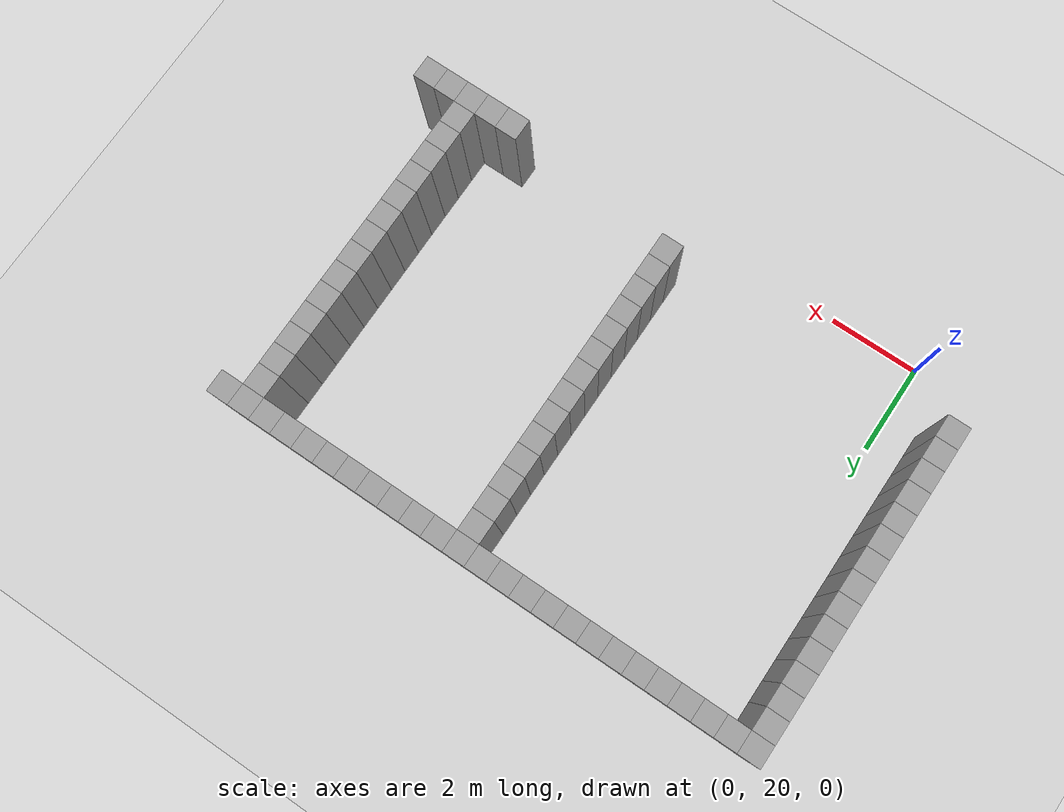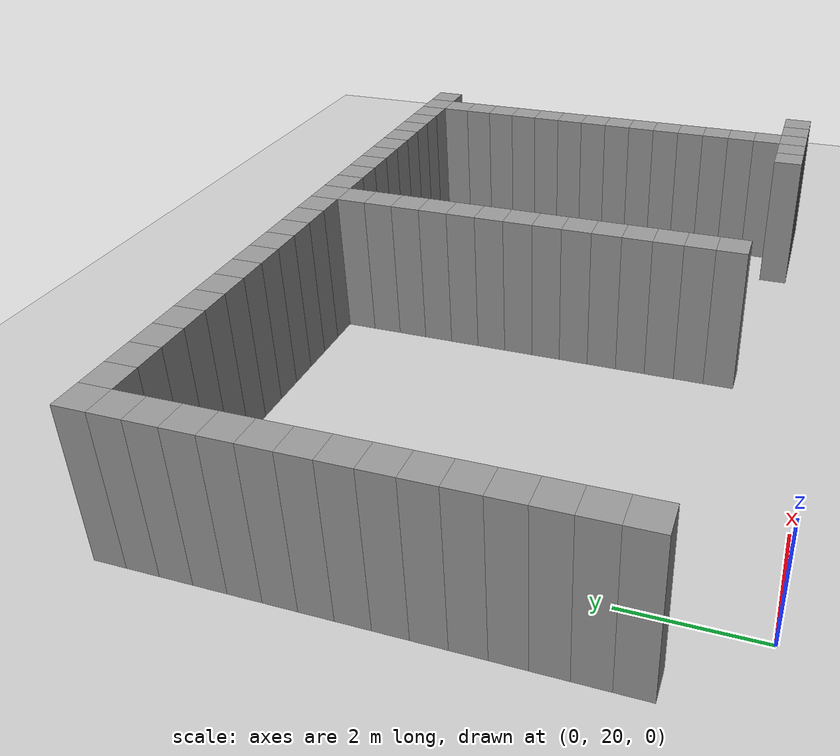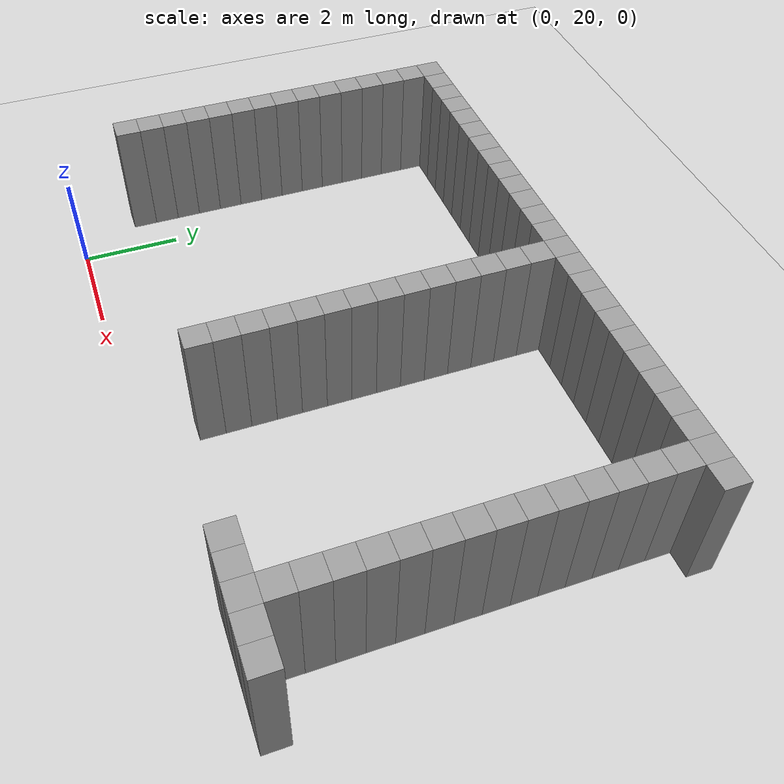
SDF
<sdf version="1.7">
 <world name="default">
  <model name="ground_plane">
   <static>1</static>
   <link name="link">
    <collision name="collision">
     <geometry><plane><normal>0 0 1</normal><size>100 100</size></plane></geometry>
     <surface>
      <contact><collide_bitmask>65535</collide_bitmask></contact>
      <friction><ode><mu>100</mu><mu2>50</mu2></ode></friction>
     </surface>
    </collision>
    <visual name="visual">
     <cast_shadows>0</cast_shadows>
     <geometry><plane><normal>0 0 1</normal><size>100 100</size></plane></geometry>
     <material>
      <script><uri>file://media/materials/scripts/gazebo.material</uri><name>Gazebo/Grey</name></script>
     </material>
    </visual>
   </link>
  </model>
  <model name="image1">
   <pose>-0.980925 -1.04264 0 0 -0 0</pose>
   <link name="Wall_45">
    <collision name="Wall_45_Collision">
     <geometry><box><size>0.5 0.5 2.5</size></box></geometry>
     <pose>0 0 1.25 0 -0 0</pose>
    </collision>
    <visual name="Wall_45_Visual">
     <pose>0 0 1.25 0 -0 0</pose>
     <geometry><box><size>0.5 0.5 2.5</size></box></geometry>
     <material>
      <script><uri>file://media/materials/scripts/gazebo.material</uri><name>Gazebo/Grey</name></script>
      <ambient>1 1 1 1</ambient>
     </material>
     <meta><layer>0</layer></meta>
    </visual>
    <pose>0 22.5 0 0 -0 0</pose>
   </link>
   <link name="Wall_46">
    <collision name="Wall_46_Collision">
     <geometry><box><size>0.5 0.5 2.5</size></box></geometry>
     <pose>0 0 1.25 0 -0 0</pose>
    </collision>
    <visual name="Wall_46_Visual">
     <pose>0 0 1.25 0 -0 0</pose>
     <geometry><box><size>0.5 0.5 2.5</size></box></geometry>
     <material>
      <script><uri>file://media/materials/scripts/gazebo.material</uri><name>Gazebo/Grey</name></script>
      <ambient>1 1 1 1</ambient>
     </material>
     <meta><layer>0</layer></meta>
    </visual>
    <pose>0 23 0 0 -0 0</pose>
   </link>
   <link name="Wall_47">
    <collision name="Wall_47_Collision">
     <geometry><box><size>0.5 0.5 2.5</size></box></geometry>
     <pose>0 0 1.25 0 -0 0</pose>
    </collision>
    <visual name="Wall_47_Visual">
     <pose>0 0 1.25 0 -0 0</pose>
     <geometry><box><size>0.5 0.5 2.5</size></box></geometry>
     <material>
      <script><uri>file://media/materials/scripts/gazebo.material</uri><name>Gazebo/Grey</name></script>
      <ambient>1 1 1 1</ambient>
     </material>
     <meta><layer>0</layer></meta>
    </visual>
    <pose>0 23.5 0 0 -0 0</pose>
   </link>
   <link name="Wall_48">
    <collision name="Wall_48_Collision">
     <geometry><box><size>0.5 0.5 2.5</size></box></geometry>
     <pose>0 0 1.25 0 -0 0</pose>
    </collision>
    <visual name="Wall_48_Visual">
     <pose>0 0 1.25 0 -0 0</pose>
     <geometry><box><size>0.5 0.5 2.5</size></box></geometry>
     <material>
      <script><uri>file://media/materials/scripts/gazebo.material</uri><name>Gazebo/Grey</name></script>
      <ambient>1 1 1 1</ambient>
     </material>
     <meta><layer>0</layer></meta>
    </visual>
    <pose>0 24 0 0 -0 0</pose>
   </link>
   <link name="Wall_49">
    <collision name="Wall_49_Collision">
     <geometry><box><size>0.5 0.5 2.5</size></box></geometry>
     <pose>0 0 1.25 0 -0 0</pose>
    </collision>
    <visual name="Wall_49_Visual">
     <pose>0 0 1.25 0 -0 0</pose>
     <geometry><box><size>0.5 0.5 2.5</size></box></geometry>
     <material>
      <script><uri>file://media/materials/scripts/gazebo.material</uri><name>Gazebo/Grey</name></script>
      <ambient>1 1 1 1</ambient>
     </material>
     <meta><layer>0</layer></meta>
    </visual>
    <pose>0 24.5 0 0 -0 0</pose>
   </link>
   <link name="Wall_50">
    <collision name="Wall_50_Collision">
     <geometry><box><size>0.5 0.5 2.5</size></box></geometry>
     <pose>0 0 1.25 0 -0 0</pose>
    </collision>
    <visual name="Wall_50_Visual">
     <pose>0 0 1.25 0 -0 0</pose>
     <geometry><box><size>0.5 0.5 2.5</size></box></geometry>
     <material>
      <script><uri>file://media/materials/scripts/gazebo.material</uri><name>Gazebo/Grey</name></script>
      <ambient>1 1 1 1</ambient>
     </material>
     <meta><layer>0</layer></meta>
    </visual>
    <pose>0 25 0 0 -0 0</pose>
   </link>
   <link name="Wall_51">
    <collision name="Wall_51_Collision">
     <geometry><box><size>0.5 0.5 2.5</size></box></geometry>
     <pose>0 0 1.25 0 -0 0</pose>
    </collision>
    <visual name="Wall_51_Visual">
     <pose>0 0 1.25 0 -0 0</pose>
     <geometry><box><size>0.5 0.5 2.5</size></box></geometry>
     <material>
      <script><uri>file://media/materials/scripts/gazebo.material</uri><name>Gazebo/Grey</name></script>
      <ambient>1 1 1 1</ambient>
     </material>
     <meta><layer>0</layer></meta>
    </visual>
    <pose>0 25.5 0 0 -0 0</pose>
   </link>
   <link name="Wall_52">
    <collision name="Wall_52_Collision">
     <geometry><box><size>0.5 0.5 2.5</size></box></geometry>
     <pose>0 0 1.25 0 -0 0</pose>
    </collision>
    <visual name="Wall_52_Visual">
     <pose>0 0 1.25 0 -0 0</pose>
     <geometry><box><size>0.5 0.5 2.5</size></box></geometry>
     <material>
      <script><uri>file://media/materials/scripts/gazebo.material</uri><name>Gazebo/Grey</name></script>
      <ambient>1 1 1 1</ambient>
     </material>
     <meta><layer>0</layer></meta>
    </visual>
    <pose>0 26 0 0 -0 0</pose>
   </link>
   <link name="Wall_53">
    <collision name="Wall_53_Collision">
     <geometry><box><size>0.5 0.5 2.5</size></box></geometry>
     <pose>0 0 1.25 0 -0 0</pose>
    </collision>
    <visual name="Wall_53_Visual">
     <pose>0 0 1.25 0 -0 0</pose>
     <geometry><box><size>0.5 0.5 2.5</size></box></geometry>
     <material>
      <script><uri>file://media/materials/scripts/gazebo.material</uri><name>Gazebo/Grey</name></script>
      <ambient>1 1 1 1</ambient>
     </material>
     <meta><layer>0</layer></meta>
    </visual>
    <pose>0 26.5 0 0 -0 0</pose>
   </link>
   <link name="Wall_54">
    <collision name="Wall_54_Collision">
     <geometry><box><size>0.5 0.5 2.5</size></box></geometry>
     <pose>0 0 1.25 0 -0 0</pose>
    </collision>
    <visual name="Wall_54_Visual">
     <pose>0 0 1.25 0 -0 0</pose>
     <geometry><box><size>0.5 0.5 2.5</size></box></geometry>
     <material>
      <script><uri>file://media/materials/scripts/gazebo.material</uri><name>Gazebo/Grey</name></script>
      <ambient>1 1 1 1</ambient>
     </material>
     <meta><layer>0</layer></meta>
    </visual>
    <pose>0 27 0 0 -0 0</pose>
   </link>
   <link name="Wall_55">
    <collision name="Wall_55_Collision">
     <geometry><box><size>0.5 0.5 2.5</size></box></geometry>
     <pose>0 0 1.25 0 -0 0</pose>
    </collision>
    <visual name="Wall_55_Visual">
     <pose>0 0 1.25 0 -0 0</pose>
     <geometry><box><size>0.5 0.5 2.5</size></box></geometry>
     <material>
      <script><uri>file://media/materials/scripts/gazebo.material</uri><name>Gazebo/Grey</name></script>
      <ambient>1 1 1 1</ambient>
     </material>
     <meta><layer>0</layer></meta>
    </visual>
    <pose>0 27.5 0 0 -0 0</pose>
   </link>
   <link name="Wall_56">
    <collision name="Wall_56_Collision">
     <geometry><box><size>0.5 0.5 2.5</size></box></geometry>
     <pose>0 0 1.25 0 -0 0</pose>
    </collision>
    <visual name="Wall_56_Visual">
     <pose>0 0 1.25 0 -0 0</pose>
     <geometry><box><size>0.5 0.5 2.5</size></box></geometry>
     <material>
      <script><uri>file://media/materials/scripts/gazebo.material</uri><name>Gazebo/Grey</name></script>
      <ambient>1 1 1 1</ambient>
     </material>
     <meta><layer>0</layer></meta>
    </visual>
    <pose>0 28 0 0 -0 0</pose>
   </link>
   <link name="Wall_57">
    <collision name="Wall_57_Collision">
     <geometry><box><size>0.5 0.5 2.5</size></box></geometry>
     <pose>0 0 1.25 0 -0 0</pose>
    </collision>
    <visual name="Wall_57_Visual">
     <pose>0 0 1.25 0 -0 0</pose>
     <geometry><box><size>0.5 0.5 2.5</size></box></geometry>
     <material>
      <script><uri>file://media/materials/scripts/gazebo.material</uri><name>Gazebo/Grey</name></script>
      <ambient>1 1 1 1</ambient>
     </material>
     <meta><layer>0</layer></meta>
    </visual>
    <pose>0 28.5 0 0 -0 0</pose>
   </link>
   <link name="Wall_58">
    <collision name="Wall_58_Collision">
     <geometry><box><size>0.5 0.5 2.5</size></box></geometry>
     <pose>0 0 1.25 0 -0 0</pose>
    </collision>
    <visual name="Wall_58_Visual">
     <pose>0 0 1.25 0 -0 0</pose>
     <geometry><box><size>0.5 0.5 2.5</size></box></geometry>
     <material>
      <script><uri>file://media/materials/scripts/gazebo.material</uri><name>Gazebo/Grey</name></script>
      <ambient>1 1 1 1</ambient>
     </material>
     <meta><layer>0</layer></meta>
    </visual>
    <pose>0 29 0 0 -0 0</pose>
   </link>
   <link name="Wall_59">
    <collision name="Wall_59_Collision">
     <geometry><box><size>0.5 0.5 2.5</size></box></geometry>
     <pose>0 0 1.25 0 -0 0</pose>
    </collision>
    <visual name="Wall_59_Visual">
     <pose>0 0 1.25 0 -0 0</pose>
     <geometry><box><size>0.5 0.5 2.5</size></box></geometry>
     <material>
      <script><uri>file://media/materials/scripts/gazebo.material</uri><name>Gazebo/Grey</name></script>
      <ambient>1 1 1 1</ambient>
     </material>
     <meta><layer>0</layer></meta>
    </visual>
    <pose>0 29.5 0 0 -0 0</pose>
   </link>
   <link name="Wall_64">
    <collision name="Wall_64_Collision">
     <geometry><box><size>0.5 0.5 2.5</size></box></geometry>
     <pose>0 0 1.25 0 -0 0</pose>
    </collision>
    <visual name="Wall_64_Visual">
     <pose>0 0 1.25 0 -0 0</pose>
     <geometry><box><size>0.5 0.5 2.5</size></box></geometry>
     <material>
      <script><uri>file://media/materials/scripts/gazebo.material</uri><name>Gazebo/Grey</name></script>
      <ambient>1 1 1 1</ambient>
     </material>
     <meta><layer>0</layer></meta>
    </visual>
    <pose>0.5 29.5 0 0 -0 0</pose>
   </link>
   <link name="Wall_69">
    <collision name="Wall_69_Collision">
     <geometry><box><size>0.5 0.5 2.5</size></box></geometry>
     <pose>0 0 1.25 0 -0 0</pose>
    </collision>
    <visual name="Wall_69_Visual">
     <pose>0 0 1.25 0 -0 0</pose>
     <geometry><box><size>0.5 0.5 2.5</size></box></geometry>
     <material>
      <script><uri>file://media/materials/scripts/gazebo.material</uri><name>Gazebo/Grey</name></script>
      <ambient>1 1 1 1</ambient>
     </material>
     <meta><layer>0</layer></meta>
    </visual>
    <pose>1 29.5 0 0 -0 0</pose>
   </link>
   <link name="Wall_74">
    <collision name="Wall_74_Collision">
     <geometry><box><size>0.5 0.5 2.5</size></box></geometry>
     <pose>0 0 1.25 0 -0 0</pose>
    </collision>
    <visual name="Wall_74_Visual">
     <pose>0 0 1.25 0 -0 0</pose>
     <geometry><box><size>0.5 0.5 2.5</size></box></geometry>
     <material>
      <script><uri>file://media/materials/scripts/gazebo.material</uri><name>Gazebo/Grey</name></script>
      <ambient>1 1 1 1</ambient>
     </material>
     <meta><layer>0</layer></meta>
    </visual>
    <pose>1.5 29.5 0 0 -0 0</pose>
   </link>
   <link name="Wall_78">
    <collision name="Wall_78_Collision">
     <geometry><box><size>0.5 0.5 2.5</size></box></geometry>
     <pose>0 0 1.25 0 -0 0</pose>
    </collision>
    <visual name="Wall_78_Visual">
     <pose>0 0 1.25 0 -0 0</pose>
     <geometry><box><size>0.5 0.5 2.5</size></box></geometry>
     <material>
      <script><uri>file://media/materials/scripts/gazebo.material</uri><name>Gazebo/Grey</name></script>
      <ambient>1 1 1 1</ambient>
     </material>
     <meta><layer>0</layer></meta>
    </visual>
    <pose>2 29.5 0 0 -0 0</pose>
   </link>
   <link name="Wall_82">
    <collision name="Wall_82_Collision">
     <geometry><box><size>0.5 0.5 2.5</size></box></geometry>
     <pose>0 0 1.25 0 -0 0</pose>
    </collision>
    <visual name="Wall_82_Visual">
     <pose>0 0 1.25 0 -0 0</pose>
     <geometry><box><size>0.5 0.5 2.5</size></box></geometry>
     <material>
      <script><uri>file://media/materials/scripts/gazebo.material</uri><name>Gazebo/Grey</name></script>
      <ambient>1 1 1 1</ambient>
     </material>
     <meta><layer>0</layer></meta>
    </visual>
    <pose>2.5 29.5 0 0 -0 0</pose>
   </link>
   <link name="Wall_86">
    <collision name="Wall_86_Collision">
     <geometry><box><size>0.5 0.5 2.5</size></box></geometry>
     <pose>0 0 1.25 0 -0 0</pose>
    </collision>
    <visual name="Wall_86_Visual">
     <pose>0 0 1.25 0 -0 0</pose>
     <geometry><box><size>0.5 0.5 2.5</size></box></geometry>
     <material>
      <script><uri>file://media/materials/scripts/gazebo.material</uri><name>Gazebo/Grey</name></script>
      <ambient>1 1 1 1</ambient>
     </material>
     <meta><layer>0</layer></meta>
    </visual>
    <pose>3 29.5 0 0 -0 0</pose>
   </link>
   <link name="Wall_90">
    <collision name="Wall_90_Collision">
     <geometry><box><size>0.5 0.5 2.5</size></box></geometry>
     <pose>0 0 1.25 0 -0 0</pose>
    </collision>
    <visual name="Wall_90_Visual">
     <pose>0 0 1.25 0 -0 0</pose>
     <geometry><box><size>0.5 0.5 2.5</size></box></geometry>
     <material>
      <script><uri>file://media/materials/scripts/gazebo.material</uri><name>Gazebo/Grey</name></script>
      <ambient>1 1 1 1</ambient>
     </material>
     <meta><layer>0</layer></meta>
    </visual>
    <pose>3.5 29.5 0 0 -0 0</pose>
   </link>
   <link name="Wall_94">
    <collision name="Wall_94_Collision">
     <geometry><box><size>0.5 0.5 2.5</size></box></geometry>
     <pose>0 0 1.25 0 -0 0</pose>
    </collision>
    <visual name="Wall_94_Visual">
     <pose>0 0 1.25 0 -0 0</pose>
     <geometry><box><size>0.5 0.5 2.5</size></box></geometry>
     <material>
      <script><uri>file://media/materials/scripts/gazebo.material</uri><name>Gazebo/Grey</name></script>
      <ambient>1 1 1 1</ambient>
     </material>
     <meta><layer>0</layer></meta>
    </visual>
    <pose>4 29.5 0 0 -0 0</pose>
   </link>
   <link name="Wall_116">
    <collision name="Wall_116_Collision">
     <geometry><box><size>0.5 0.5 2.5</size></box></geometry>
     <pose>0 0 1.25 0 -0 0</pose>
    </collision>
    <visual name="Wall_116_Visual">
     <pose>0 0 1.25 0 -0 0</pose>
     <geometry><box><size>0.5 0.5 2.5</size></box></geometry>
     <material>
      <script><uri>file://media/materials/scripts/gazebo.material</uri><name>Gazebo/Grey</name></script>
      <ambient>1 1 1 1</ambient>
     </material>
     <meta><layer>0</layer></meta>
    </visual>
    <pose>4.5 29.5 0 0 -0 0</pose>
   </link>
   <link name="Wall_121">
    <collision name="Wall_121_Collision">
     <geometry><box><size>0.5 0.5 2.5</size></box></geometry>
     <pose>0 0 1.25 0 -0 0</pose>
    </collision>
    <visual name="Wall_121_Visual">
     <pose>0 0 1.25 0 -0 0</pose>
     <geometry><box><size>0.5 0.5 2.5</size></box></geometry>
     <material>
      <script><uri>file://media/materials/scripts/gazebo.material</uri><name>Gazebo/Grey</name></script>
      <ambient>1 1 1 1</ambient>
     </material>
     <meta><layer>0</layer></meta>
    </visual>
    <pose>5 29.5 0 0 -0 0</pose>
   </link>
   <link name="Wall_126">
    <collision name="Wall_126_Collision">
     <geometry><box><size>0.5 0.5 2.5</size></box></geometry>
     <pose>0 0 1.25 0 -0 0</pose>
    </collision>
    <visual name="Wall_126_Visual">
     <pose>0 0 1.25 0 -0 0</pose>
     <geometry><box><size>0.5 0.5 2.5</size></box></geometry>
     <material>
      <script><uri>file://media/materials/scripts/gazebo.material</uri><name>Gazebo/Grey</name></script>
      <ambient>1 1 1 1</ambient>
     </material>
     <meta><layer>0</layer></meta>
    </visual>
    <pose>5.5 29.5 0 0 -0 0</pose>
   </link>
   <link name="Wall_131">
    <collision name="Wall_131_Collision">
     <geometry><box><size>0.5 0.5 2.5</size></box></geometry>
     <pose>0 0 1.25 0 -0 0</pose>
    </collision>
    <visual name="Wall_131_Visual">
     <pose>0 0 1.25 0 -0 0</pose>
     <geometry><box><size>0.5 0.5 2.5</size></box></geometry>
     <material>
      <script><uri>file://media/materials/scripts/gazebo.material</uri><name>Gazebo/Grey</name></script>
      <ambient>1 1 1 1</ambient>
     </material>
     <meta><layer>0</layer></meta>
    </visual>
    <pose>6 29.5 0 0 -0 0</pose>
   </link>
   <link name="Wall_136">
    <collision name="Wall_136_Collision">
     <geometry><box><size>0.5 0.5 2.5</size></box></geometry>
     <pose>0 0 1.25 0 -0 0</pose>
    </collision>
    <visual name="Wall_136_Visual">
     <pose>0 0 1.25 0 -0 0</pose>
     <geometry><box><size>0.5 0.5 2.5</size></box></geometry>
     <material>
      <script><uri>file://media/materials/scripts/gazebo.material</uri><name>Gazebo/Grey</name></script>
      <ambient>1 1 1 1</ambient>
     </material>
     <meta><layer>0</layer></meta>
    </visual>
    <pose>6.5 22.5 0 0 -0 0</pose>
   </link>
   <link name="Wall_137">
    <collision name="Wall_137_Collision">
     <geometry><box><size>0.5 0.5 2.5</size></box></geometry>
     <pose>0 0 1.25 0 -0 0</pose>
    </collision>
    <visual name="Wall_137_Visual">
     <pose>0 0 1.25 0 -0 0</pose>
     <geometry><box><size>0.5 0.5 2.5</size></box></geometry>
     <material>
      <script><uri>file://media/materials/scripts/gazebo.material</uri><name>Gazebo/Grey</name></script>
      <ambient>1 1 1 1</ambient>
     </material>
     <meta><layer>0</layer></meta>
    </visual>
    <pose>6.5 23 0 0 -0 0</pose>
   </link>
   <link name="Wall_138">
    <collision name="Wall_138_Collision">
     <geometry><box><size>0.5 0.5 2.5</size></box></geometry>
     <pose>0 0 1.25 0 -0 0</pose>
    </collision>
    <visual name="Wall_138_Visual">
     <pose>0 0 1.25 0 -0 0</pose>
     <geometry><box><size>0.5 0.5 2.5</size></box></geometry>
     <material>
      <script><uri>file://media/materials/scripts/gazebo.material</uri><name>Gazebo/Grey</name></script>
      <ambient>1 1 1 1</ambient>
     </material>
     <meta><layer>0</layer></meta>
    </visual>
    <pose>6.5 23.5 0 0 -0 0</pose>
   </link>
   <link name="Wall_139">
    <collision name="Wall_139_Collision">
     <geometry><box><size>0.5 0.5 2.5</size></box></geometry>
     <pose>0 0 1.25 0 -0 0</pose>
    </collision>
    <visual name="Wall_139_Visual">
     <pose>0 0 1.25 0 -0 0</pose>
     <geometry><box><size>0.5 0.5 2.5</size></box></geometry>
     <material>
      <script><uri>file://media/materials/scripts/gazebo.material</uri><name>Gazebo/Grey</name></script>
      <ambient>1 1 1 1</ambient>
     </material>
     <meta><layer>0</layer></meta>
    </visual>
    <pose>6.5 24 0 0 -0 0</pose>
   </link>
   <link name="Wall_140">
    <collision name="Wall_140_Collision">
     <geometry><box><size>0.5 0.5 2.5</size></box></geometry>
     <pose>0 0 1.25 0 -0 0</pose>
    </collision>
    <visual name="Wall_140_Visual">
     <pose>0 0 1.25 0 -0 0</pose>
     <geometry><box><size>0.5 0.5 2.5</size></box></geometry>
     <material>
      <script><uri>file://media/materials/scripts/gazebo.material</uri><name>Gazebo/Grey</name></script>
      <ambient>1 1 1 1</ambient>
     </material>
     <meta><layer>0</layer></meta>
    </visual>
    <pose>6.5 24.5 0 0 -0 0</pose>
   </link>
   <link name="Wall_141">
    <collision name="Wall_141_Collision">
     <geometry><box><size>0.5 0.5 2.5</size></box></geometry>
     <pose>0 0 1.25 0 -0 0</pose>
    </collision>
    <visual name="Wall_141_Visual">
     <pose>0 0 1.25 0 -0 0</pose>
     <geometry><box><size>0.5 0.5 2.5</size></box></geometry>
     <material>
      <script><uri>file://media/materials/scripts/gazebo.material</uri><name>Gazebo/Grey</name></script>
      <ambient>1 1 1 1</ambient>
     </material>
     <meta><layer>0</layer></meta>
    </visual>
    <pose>6.5 25 0 0 -0 0</pose>
   </link>
   <link name="Wall_142">
    <collision name="Wall_142_Collision">
     <geometry><box><size>0.5 0.5 2.5</size></box></geometry>
     <pose>0 0 1.25 0 -0 0</pose>
    </collision>
    <visual name="Wall_142_Visual">
     <pose>0 0 1.25 0 -0 0</pose>
     <geometry><box><size>0.5 0.5 2.5</size></box></geometry>
     <material>
      <script><uri>file://media/materials/scripts/gazebo.material</uri><name>Gazebo/Grey</name></script>
      <ambient>1 1 1 1</ambient>
     </material>
     <meta><layer>0</layer></meta>
    </visual>
    <pose>6.5 25.5 0 0 -0 0</pose>
   </link>
   <link name="Wall_143">
    <collision name="Wall_143_Collision">
     <geometry><box><size>0.5 0.5 2.5</size></box></geometry>
     <pose>0 0 1.25 0 -0 0</pose>
    </collision>
    <visual name="Wall_143_Visual">
     <pose>0 0 1.25 0 -0 0</pose>
     <geometry><box><size>0.5 0.5 2.5</size></box></geometry>
     <material>
      <script><uri>file://media/materials/scripts/gazebo.material</uri><name>Gazebo/Grey</name></script>
      <ambient>1 1 1 1</ambient>
     </material>
     <meta><layer>0</layer></meta>
    </visual>
    <pose>6.5 26 0 0 -0 0</pose>
   </link>
   <link name="Wall_144">
    <collision name="Wall_144_Collision">
     <geometry><box><size>0.5 0.5 2.5</size></box></geometry>
     <pose>0 0 1.25 0 -0 0</pose>
    </collision>
    <visual name="Wall_144_Visual">
     <pose>0 0 1.25 0 -0 0</pose>
     <geometry><box><size>0.5 0.5 2.5</size></box></geometry>
     <material>
      <script><uri>file://media/materials/scripts/gazebo.material</uri><name>Gazebo/Grey</name></script>
      <ambient>1 1 1 1</ambient>
     </material>
     <meta><layer>0</layer></meta>
    </visual>
    <pose>6.5 26.5 0 0 -0 0</pose>
   </link>
   <link name="Wall_145">
    <collision name="Wall_145_Collision">
     <geometry><box><size>0.5 0.5 2.5</size></box></geometry>
     <pose>0 0 1.25 0 -0 0</pose>
    </collision>
    <visual name="Wall_145_Visual">
     <pose>0 0 1.25 0 -0 0</pose>
     <geometry><box><size>0.5 0.5 2.5</size></box></geometry>
     <material>
      <script><uri>file://media/materials/scripts/gazebo.material</uri><name>Gazebo/Grey</name></script>
      <ambient>1 1 1 1</ambient>
     </material>
     <meta><layer>0</layer></meta>
    </visual>
    <pose>6.5 27 0 0 -0 0</pose>
   </link>
   <link name="Wall_146">
    <collision name="Wall_146_Collision">
     <geometry><box><size>0.5 0.5 2.5</size></box></geometry>
     <pose>0 0 1.25 0 -0 0</pose>
    </collision>
    <visual name="Wall_146_Visual">
     <pose>0 0 1.25 0 -0 0</pose>
     <geometry><box><size>0.5 0.5 2.5</size></box></geometry>
     <material>
      <script><uri>file://media/materials/scripts/gazebo.material</uri><name>Gazebo/Grey</name></script>
      <ambient>1 1 1 1</ambient>
     </material>
     <meta><layer>0</layer></meta>
    </visual>
    <pose>6.5 27.5 0 0 -0 0</pose>
   </link>
   <link name="Wall_147">
    <collision name="Wall_147_Collision">
     <geometry><box><size>0.5 0.5 2.5</size></box></geometry>
     <pose>0 0 1.25 0 -0 0</pose>
    </collision>
    <visual name="Wall_147_Visual">
     <pose>0 0 1.25 0 -0 0</pose>
     <geometry><box><size>0.5 0.5 2.5</size></box></geometry>
     <material>
      <script><uri>file://media/materials/scripts/gazebo.material</uri><name>Gazebo/Grey</name></script>
      <ambient>1 1 1 1</ambient>
     </material>
     <meta><layer>0</layer></meta>
    </visual>
    <pose>6.5 28 0 0 -0 0</pose>
   </link>
   <link name="Wall_148">
    <collision name="Wall_148_Collision">
     <geometry><box><size>0.5 0.5 2.5</size></box></geometry>
     <pose>0 0 1.25 0 -0 0</pose>
    </collision>
    <visual name="Wall_148_Visual">
     <pose>0 0 1.25 0 -0 0</pose>
     <geometry><box><size>0.5 0.5 2.5</size></box></geometry>
     <material>
      <script><uri>file://media/materials/scripts/gazebo.material</uri><name>Gazebo/Grey</name></script>
      <ambient>1 1 1 1</ambient>
     </material>
     <meta><layer>0</layer></meta>
    </visual>
    <pose>6.5 28.5 0 0 -0 0</pose>
   </link>
   <link name="Wall_149">
    <collision name="Wall_149_Collision">
     <geometry><box><size>0.5 0.5 2.5</size></box></geometry>
     <pose>0 0 1.25 0 -0 0</pose>
    </collision>
    <visual name="Wall_149_Visual">
     <pose>0 0 1.25 0 -0 0</pose>
     <geometry><box><size>0.5 0.5 2.5</size></box></geometry>
     <material>
      <script><uri>file://media/materials/scripts/gazebo.material</uri><name>Gazebo/Grey</name></script>
      <ambient>1 1 1 1</ambient>
     </material>
     <meta><layer>0</layer></meta>
    </visual>
    <pose>6.5 29 0 0 -0 0</pose>
   </link>
   <link name="Wall_150">
    <collision name="Wall_150_Collision">
     <geometry><box><size>0.5 0.5 2.5</size></box></geometry>
     <pose>0 0 1.25 0 -0 0</pose>
    </collision>
    <visual name="Wall_150_Visual">
     <pose>0 0 1.25 0 -0 0</pose>
     <geometry><box><size>0.5 0.5 2.5</size></box></geometry>
     <material>
      <script><uri>file://media/materials/scripts/gazebo.material</uri><name>Gazebo/Grey</name></script>
      <ambient>1 1 1 1</ambient>
     </material>
     <meta><layer>0</layer></meta>
    </visual>
    <pose>6.5 29.5 0 0 -0 0</pose>
   </link>
   <link name="Wall_155">
    <collision name="Wall_155_Collision">
     <geometry><box><size>0.5 0.5 2.5</size></box></geometry>
     <pose>0 0 1.25 0 -0 0</pose>
    </collision>
    <visual name="Wall_155_Visual">
     <pose>0 0 1.25 0 -0 0</pose>
     <geometry><box><size>0.5 0.5 2.5</size></box></geometry>
     <material>
      <script><uri>file://media/materials/scripts/gazebo.material</uri><name>Gazebo/Grey</name></script>
      <ambient>1 1 1 1</ambient>
     </material>
     <meta><layer>0</layer></meta>
    </visual>
    <pose>7 29.5 0 0 -0 0</pose>
   </link>
   <link name="Wall_161">
    <collision name="Wall_161_Collision">
     <geometry><box><size>0.5 0.5 2.5</size></box></geometry>
     <pose>0 0 1.25 0 -0 0</pose>
    </collision>
    <visual name="Wall_161_Visual">
     <pose>0 0 1.25 0 -0 0</pose>
     <geometry><box><size>0.5 0.5 2.5</size></box></geometry>
     <material>
      <script><uri>file://media/materials/scripts/gazebo.material</uri><name>Gazebo/Grey</name></script>
      <ambient>1 1 1 1</ambient>
     </material>
     <meta><layer>0</layer></meta>
    </visual>
    <pose>7.5 29.5 0 0 -0 0</pose>
   </link>
   <link name="Wall_163">
    <collision name="Wall_163_Collision">
     <geometry><box><size>0.5 0.5 2.5</size></box></geometry>
     <pose>0 0 1.25 0 -0 0</pose>
    </collision>
    <visual name="Wall_163_Visual">
     <pose>0 0 1.25 0 -0 0</pose>
     <geometry><box><size>0.5 0.5 2.5</size></box></geometry>
     <material>
      <script><uri>file://media/materials/scripts/gazebo.material</uri><name>Gazebo/Grey</name></script>
      <ambient>1 1 1 1</ambient>
     </material>
     <meta><layer>0</layer></meta>
    </visual>
    <pose>8 29.5 0 0 -0 0</pose>
   </link>
   <link name="Wall_165">
    <collision name="Wall_165_Collision">
     <geometry><box><size>0.5 0.5 2.5</size></box></geometry>
     <pose>0 0 1.25 0 -0 0</pose>
    </collision>
    <visual name="Wall_165_Visual">
     <pose>0 0 1.25 0 -0 0</pose>
     <geometry><box><size>0.5 0.5 2.5</size></box></geometry>
     <material>
      <script><uri>file://media/materials/scripts/gazebo.material</uri><name>Gazebo/Grey</name></script>
      <ambient>1 1 1 1</ambient>
     </material>
     <meta><layer>0</layer></meta>
    </visual>
    <pose>8.5 29.5 0 0 -0 0</pose>
   </link>
   <link name="Wall_185">
    <collision name="Wall_185_Collision">
     <geometry><box><size>0.5 0.5 2.5</size></box></geometry>
     <pose>0 0 1.25 0 -0 0</pose>
    </collision>
    <visual name="Wall_185_Visual">
     <pose>0 0 1.25 0 -0 0</pose>
     <geometry><box><size>0.5 0.5 2.5</size></box></geometry>
     <material>
      <script><uri>file://media/materials/scripts/gazebo.material</uri><name>Gazebo/Grey</name></script>
      <ambient>1 1 1 1</ambient>
     </material>
     <meta><layer>0</layer></meta>
    </visual>
    <pose>9 29.5 0 0 -0 0</pose>
   </link>
   <link name="Wall_187">
    <collision name="Wall_187_Collision">
     <geometry><box><size>0.5 0.5 2.5</size></box></geometry>
     <pose>0 0 1.25 0 -0 0</pose>
    </collision>
    <visual name="Wall_187_Visual">
     <pose>0 0 1.25 0 -0 0</pose>
     <geometry><box><size>0.5 0.5 2.5</size></box></geometry>
     <material>
      <script><uri>file://media/materials/scripts/gazebo.material</uri><name>Gazebo/Grey</name></script>
      <ambient>1 1 1 1</ambient>
     </material>
     <meta><layer>0</layer></meta>
    </visual>
    <pose>9.5 29.5 0 0 -0 0</pose>
   </link>
   <link name="Wall_189">
    <collision name="Wall_189_Collision">
     <geometry><box><size>0.5 0.5 2.5</size></box></geometry>
     <pose>0 0 1.25 0 -0 0</pose>
    </collision>
    <visual name="Wall_189_Visual">
     <pose>0 0 1.25 0 -0 0</pose>
     <geometry><box><size>0.5 0.5 2.5</size></box></geometry>
     <material>
      <script><uri>file://media/materials/scripts/gazebo.material</uri><name>Gazebo/Grey</name></script>
      <ambient>1 1 1 1</ambient>
     </material>
     <meta><layer>0</layer></meta>
    </visual>
    <pose>10 29.5 0 0 -0 0</pose>
   </link>
   <link name="Wall_191">
    <collision name="Wall_191_Collision">
     <geometry><box><size>0.5 0.5 2.5</size></box></geometry>
     <pose>0 0 1.25 0 -0 0</pose>
    </collision>
    <visual name="Wall_191_Visual">
     <pose>0 0 1.25 0 -0 0</pose>
     <geometry><box><size>0.5 0.5 2.5</size></box></geometry>
     <material>
      <script><uri>file://media/materials/scripts/gazebo.material</uri><name>Gazebo/Grey</name></script>
      <ambient>1 1 1 1</ambient>
     </material>
     <meta><layer>0</layer></meta>
    </visual>
    <pose>10.5 22 0 0 -0 0</pose>
   </link>
   <link name="Wall_192">
    <collision name="Wall_192_Collision">
     <geometry><box><size>0.5 0.5 2.5</size></box></geometry>
     <pose>0 0 1.25 0 -0 0</pose>
    </collision>
    <visual name="Wall_192_Visual">
     <pose>0 0 1.25 0 -0 0</pose>
     <geometry><box><size>0.5 0.5 2.5</size></box></geometry>
     <material>
      <script><uri>file://media/materials/scripts/gazebo.material</uri><name>Gazebo/Grey</name></script>
      <ambient>1 1 1 1</ambient>
     </material>
     <meta><layer>0</layer></meta>
    </visual>
    <pose>10.5 29.5 0 0 -0 0</pose>
   </link>
   <link name="Wall_194">
    <collision name="Wall_194_Collision">
     <geometry><box><size>0.5 0.5 2.5</size></box></geometry>
     <pose>0 0 1.25 0 -0 0</pose>
    </collision>
    <visual name="Wall_194_Visual">
     <pose>0 0 1.25 0 -0 0</pose>
     <geometry><box><size>0.5 0.5 2.5</size></box></geometry>
     <material>
      <script><uri>file://media/materials/scripts/gazebo.material</uri><name>Gazebo/Grey</name></script>
      <ambient>1 1 1 1</ambient>
     </material>
     <meta><layer>0</layer></meta>
    </visual>
    <pose>11 22 0 0 -0 0</pose>
   </link>
   <link name="Wall_195">
    <collision name="Wall_195_Collision">
     <geometry><box><size>0.5 0.5 2.5</size></box></geometry>
     <pose>0 0 1.25 0 -0 0</pose>
    </collision>
    <visual name="Wall_195_Visual">
     <pose>0 0 1.25 0 -0 0</pose>
     <geometry><box><size>0.5 0.5 2.5</size></box></geometry>
     <material>
      <script><uri>file://media/materials/scripts/gazebo.material</uri><name>Gazebo/Grey</name></script>
      <ambient>1 1 1 1</ambient>
     </material>
     <meta><layer>0</layer></meta>
    </visual>
    <pose>11 29.5 0 0 -0 0</pose>
   </link>
   <link name="Wall_197">
    <collision name="Wall_197_Collision">
     <geometry><box><size>0.5 0.5 2.5</size></box></geometry>
     <pose>0 0 1.25 0 -0 0</pose>
    </collision>
    <visual name="Wall_197_Visual">
     <pose>0 0 1.25 0 -0 0</pose>
     <geometry><box><size>0.5 0.5 2.5</size></box></geometry>
     <material>
      <script><uri>file://media/materials/scripts/gazebo.material</uri><name>Gazebo/Grey</name></script>
      <ambient>1 1 1 1</ambient>
     </material>
     <meta><layer>0</layer></meta>
    </visual>
    <pose>11.5 22 0 0 -0 0</pose>
   </link>
   <link name="Wall_198">
    <collision name="Wall_198_Collision">
     <geometry><box><size>0.5 0.5 2.5</size></box></geometry>
     <pose>0 0 1.25 0 -0 0</pose>
    </collision>
    <visual name="Wall_198_Visual">
     <pose>0 0 1.25 0 -0 0</pose>
     <geometry><box><size>0.5 0.5 2.5</size></box></geometry>
     <material>
      <script><uri>file://media/materials/scripts/gazebo.material</uri><name>Gazebo/Grey</name></script>
      <ambient>1 1 1 1</ambient>
     </material>
     <meta><layer>0</layer></meta>
    </visual>
    <pose>11.5 22.5 0 0 -0 0</pose>
   </link>
   <link name="Wall_199">
    <collision name="Wall_199_Collision">
     <geometry><box><size>0.5 0.5 2.5</size></box></geometry>
     <pose>0 0 1.25 0 -0 0</pose>
    </collision>
    <visual name="Wall_199_Visual">
     <pose>0 0 1.25 0 -0 0</pose>
     <geometry><box><size>0.5 0.5 2.5</size></box></geometry>
     <material>
      <script><uri>file://media/materials/scripts/gazebo.material</uri><name>Gazebo/Grey</name></script>
      <ambient>1 1 1 1</ambient>
     </material>
     <meta><layer>0</layer></meta>
    </visual>
    <pose>11.5 23 0 0 -0 0</pose>
   </link>
   <link name="Wall_200">
    <collision name="Wall_200_Collision">
     <geometry><box><size>0.5 0.5 2.5</size></box></geometry>
     <pose>0 0 1.25 0 -0 0</pose>
    </collision>
    <visual name="Wall_200_Visual">
     <pose>0 0 1.25 0 -0 0</pose>
     <geometry><box><size>0.5 0.5 2.5</size></box></geometry>
     <material>
      <script><uri>file://media/materials/scripts/gazebo.material</uri><name>Gazebo/Grey</name></script>
      <ambient>1 1 1 1</ambient>
     </material>
     <meta><layer>0</layer></meta>
    </visual>
    <pose>11.5 23.5 0 0 -0 0</pose>
   </link>
   <link name="Wall_201">
    <collision name="Wall_201_Collision">
     <geometry><box><size>0.5 0.5 2.5</size></box></geometry>
     <pose>0 0 1.25 0 -0 0</pose>
    </collision>
    <visual name="Wall_201_Visual">
     <pose>0 0 1.25 0 -0 0</pose>
     <geometry><box><size>0.5 0.5 2.5</size></box></geometry>
     <material>
      <script><uri>file://media/materials/scripts/gazebo.material</uri><name>Gazebo/Grey</name></script>
      <ambient>1 1 1 1</ambient>
     </material>
     <meta><layer>0</layer></meta>
    </visual>
    <pose>11.5 24 0 0 -0 0</pose>
   </link>
   <link name="Wall_202">
    <collision name="Wall_202_Collision">
     <geometry><box><size>0.5 0.5 2.5</size></box></geometry>
     <pose>0 0 1.25 0 -0 0</pose>
    </collision>
    <visual name="Wall_202_Visual">
     <pose>0 0 1.25 0 -0 0</pose>
     <geometry><box><size>0.5 0.5 2.5</size></box></geometry>
     <material>
      <script><uri>file://media/materials/scripts/gazebo.material</uri><name>Gazebo/Grey</name></script>
      <ambient>1 1 1 1</ambient>
     </material>
     <meta><layer>0</layer></meta>
    </visual>
    <pose>11.5 24.5 0 0 -0 0</pose>
   </link>
   <link name="Wall_203">
    <collision name="Wall_203_Collision">
     <geometry><box><size>0.5 0.5 2.5</size></box></geometry>
     <pose>0 0 1.25 0 -0 0</pose>
    </collision>
    <visual name="Wall_203_Visual">
     <pose>0 0 1.25 0 -0 0</pose>
     <geometry><box><size>0.5 0.5 2.5</size></box></geometry>
     <material>
      <script><uri>file://media/materials/scripts/gazebo.material</uri><name>Gazebo/Grey</name></script>
      <ambient>1 1 1 1</ambient>
     </material>
     <meta><layer>0</layer></meta>
    </visual>
    <pose>11.5 25 0 0 -0 0</pose>
   </link>
   <link name="Wall_204">
    <collision name="Wall_204_Collision">
     <geometry><box><size>0.5 0.5 2.5</size></box></geometry>
     <pose>0 0 1.25 0 -0 0</pose>
    </collision>
    <visual name="Wall_204_Visual">
     <pose>0 0 1.25 0 -0 0</pose>
     <geometry><box><size>0.5 0.5 2.5</size></box></geometry>
     <material>
      <script><uri>file://media/materials/scripts/gazebo.material</uri><name>Gazebo/Grey</name></script>
      <ambient>1 1 1 1</ambient>
     </material>
     <meta><layer>0</layer></meta>
    </visual>
    <pose>11.5 25.5 0 0 -0 0</pose>
   </link>
   <link name="Wall_205">
    <collision name="Wall_205_Collision">
     <geometry><box><size>0.5 0.5 2.5</size></box></geometry>
     <pose>0 0 1.25 0 -0 0</pose>
    </collision>
    <visual name="Wall_205_Visual">
     <pose>0 0 1.25 0 -0 0</pose>
     <geometry><box><size>0.5 0.5 2.5</size></box></geometry>
     <material>
      <script><uri>file://media/materials/scripts/gazebo.material</uri><name>Gazebo/Grey</name></script>
      <ambient>1 1 1 1</ambient>
     </material>
     <meta><layer>0</layer></meta>
    </visual>
    <pose>11.5 26 0 0 -0 0</pose>
   </link>
   <link name="Wall_206">
    <collision name="Wall_206_Collision">
     <geometry><box><size>0.5 0.5 2.5</size></box></geometry>
     <pose>0 0 1.25 0 -0 0</pose>
    </collision>
    <visual name="Wall_206_Visual">
     <pose>0 0 1.25 0 -0 0</pose>
     <geometry><box><size>0.5 0.5 2.5</size></box></geometry>
     <material>
      <script><uri>file://media/materials/scripts/gazebo.material</uri><name>Gazebo/Grey</name></script>
      <ambient>1 1 1 1</ambient>
     </material>
     <meta><layer>0</layer></meta>
    </visual>
    <pose>11.5 26.5 0 0 -0 0</pose>
   </link>
   <link name="Wall_207">
    <collision name="Wall_207_Collision">
     <geometry><box><size>0.5 0.5 2.5</size></box></geometry>
     <pose>0 0 1.25 0 -0 0</pose>
    </collision>
    <visual name="Wall_207_Visual">
     <pose>0 0 1.25 0 -0 0</pose>
     <geometry><box><size>0.5 0.5 2.5</size></box></geometry>
     <material>
      <script><uri>file://media/materials/scripts/gazebo.material</uri><name>Gazebo/Grey</name></script>
      <ambient>1 1 1 1</ambient>
     </material>
     <meta><layer>0</layer></meta>
    </visual>
    <pose>11.5 27 0 0 -0 0</pose>
   </link>
   <link name="Wall_208">
    <collision name="Wall_208_Collision">
     <geometry><box><size>0.5 0.5 2.5</size></box></geometry>
     <pose>0 0 1.25 0 -0 0</pose>
    </collision>
    <visual name="Wall_208_Visual">
     <pose>0 0 1.25 0 -0 0</pose>
     <geometry><box><size>0.5 0.5 2.5</size></box></geometry>
     <material>
      <script><uri>file://media/materials/scripts/gazebo.material</uri><name>Gazebo/Grey</name></script>
      <ambient>1 1 1 1</ambient>
     </material>
     <meta><layer>0</layer></meta>
    </visual>
    <pose>11.5 27.5 0 0 -0 0</pose>
   </link>
   <link name="Wall_209">
    <collision name="Wall_209_Collision">
     <geometry><box><size>0.5 0.5 2.5</size></box></geometry>
     <pose>0 0 1.25 0 -0 0</pose>
    </collision>
    <visual name="Wall_209_Visual">
     <pose>0 0 1.25 0 -0 0</pose>
     <geometry><box><size>0.5 0.5 2.5</size></box></geometry>
     <material>
      <script><uri>file://media/materials/scripts/gazebo.material</uri><name>Gazebo/Grey</name></script>
      <ambient>1 1 1 1</ambient>
     </material>
     <meta><layer>0</layer></meta>
    </visual>
    <pose>11.5 28 0 0 -0 0</pose>
   </link>
   <link name="Wall_210">
    <collision name="Wall_210_Collision">
     <geometry><box><size>0.5 0.5 2.5</size></box></geometry>
     <pose>0 0 1.25 0 -0 0</pose>
    </collision>
    <visual name="Wall_210_Visual">
     <pose>0 0 1.25 0 -0 0</pose>
     <geometry><box><size>0.5 0.5 2.5</size></box></geometry>
     <material>
      <script><uri>file://media/materials/scripts/gazebo.material</uri><name>Gazebo/Grey</name></script>
      <ambient>1 1 1 1</ambient>
     </material>
     <meta><layer>0</layer></meta>
    </visual>
    <pose>11.5 28.5 0 0 -0 0</pose>
   </link>
   <link name="Wall_211">
    <collision name="Wall_211_Collision">
     <geometry><box><size>0.5 0.5 2.5</size></box></geometry>
     <pose>0 0 1.25 0 -0 0</pose>
    </collision>
    <visual name="Wall_211_Visual">
     <pose>0 0 1.25 0 -0 0</pose>
     <geometry><box><size>0.5 0.5 2.5</size></box></geometry>
     <material>
      <script><uri>file://media/materials/scripts/gazebo.material</uri><name>Gazebo/Grey</name></script>
      <ambient>1 1 1 1</ambient>
     </material>
     <meta><layer>0</layer></meta>
    </visual>
    <pose>11.5 29 0 0 -0 0</pose>
   </link>
   <link name="Wall_212">
    <collision name="Wall_212_Collision">
     <geometry><box><size>0.5 0.5 2.5</size></box></geometry>
     <pose>0 0 1.25 0 -0 0</pose>
    </collision>
    <visual name="Wall_212_Visual">
     <pose>0 0 1.25 0 -0 0</pose>
     <geometry><box><size>0.5 0.5 2.5</size></box></geometry>
     <material>
      <script><uri>file://media/materials/scripts/gazebo.material</uri><name>Gazebo/Grey</name></script>
      <ambient>1 1 1 1</ambient>
     </material>
     <meta><layer>0</layer></meta>
    </visual>
    <pose>11.5 29.5 0 0 -0 0</pose>
   </link>
   <link name="Wall_214">
    <collision name="Wall_214_Collision">
     <geometry><box><size>0.5 0.5 2.5</size></box></geometry>
     <pose>0 0 1.25 0 -0 0</pose>
    </collision>
    <visual name="Wall_214_Visual">
     <pose>0 0 1.25 0 -0 0</pose>
     <geometry><box><size>0.5 0.5 2.5</size></box></geometry>
     <material>
      <script><uri>file://media/materials/scripts/gazebo.material</uri><name>Gazebo/Grey</name></script>
      <ambient>1 1 1 1</ambient>
     </material>
     <meta><layer>0</layer></meta>
    </visual>
    <pose>12 22 0 0 -0 0</pose>
   </link>
   <link name="Wall_215">
    <collision name="Wall_215_Collision">
     <geometry><box><size>0.5 0.5 2.5</size></box></geometry>
     <pose>0 0 1.25 0 -0 0</pose>
    </collision>
    <visual name="Wall_215_Visual">
     <pose>0 0 1.25 0 -0 0</pose>
     <geometry><box><size>0.5 0.5 2.5</size></box></geometry>
     <material>
      <script><uri>file://media/materials/scripts/gazebo.material</uri><name>Gazebo/Grey</name></script>
      <ambient>1 1 1 1</ambient>
     </material>
     <meta><layer>0</layer></meta>
    </visual>
    <pose>12 29.5 0 0 -0 0</pose>
   </link>
   <link name="Wall_217">
    <collision name="Wall_217_Collision">
     <geometry><box><size>0.5 0.5 2.5</size></box></geometry>
     <pose>0 0 1.25 0 -0 0</pose>
    </collision>
    <visual name="Wall_217_Visual">
     <pose>0 0 1.25 0 -0 0</pose>
     <geometry><box><size>0.5 0.5 2.5</size></box></geometry>
     <material>
      <script><uri>file://media/materials/scripts/gazebo.material</uri><name>Gazebo/Grey</name></script>
      <ambient>1 1 1 1</ambient>
     </material>
     <meta><layer>0</layer></meta>
    </visual>
    <pose>12.5 22 0 0 -0 0</pose>
   </link>
   <static>1</static>
  </model>
 </world>
</sdf>
